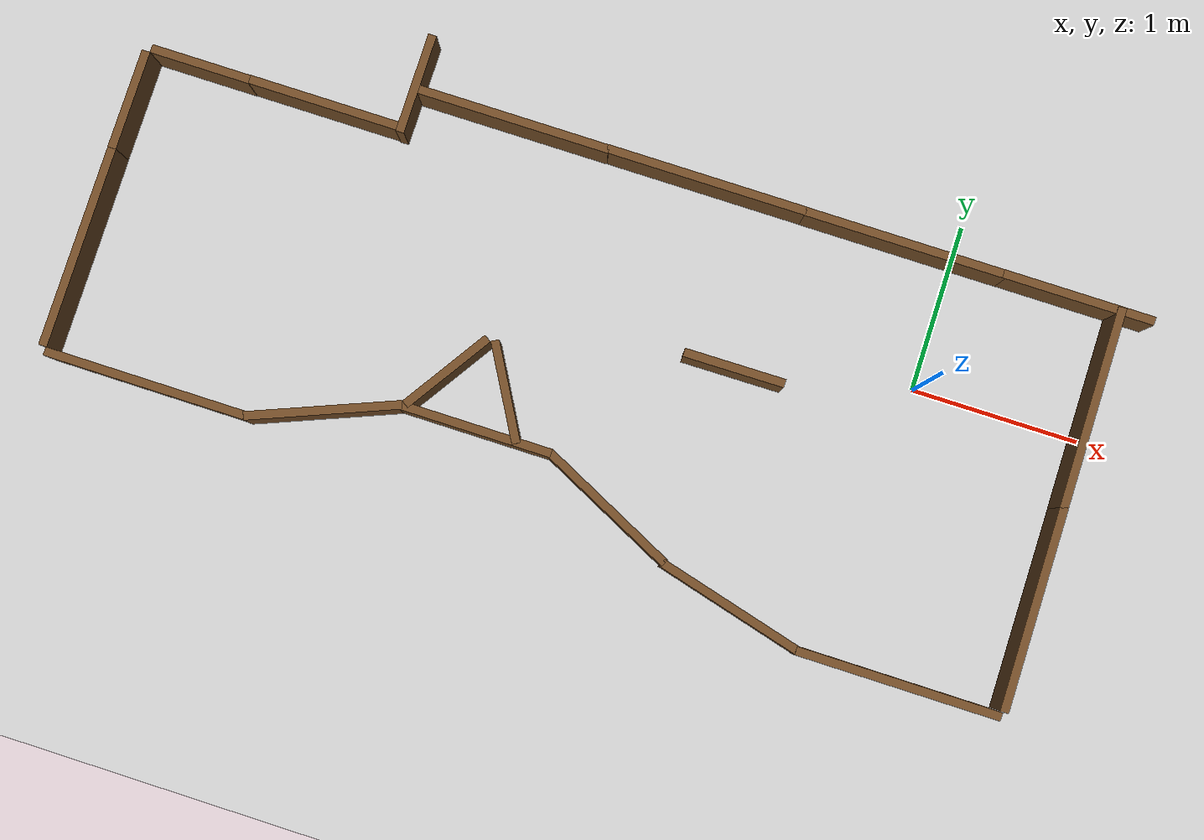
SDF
<sdf version="1.7">
 <world name="default">
  <light name="sun" type="directional">
   <pose>0 0 10 0 -0 0</pose>
   <diffuse>0.8 0.8 0.8 1</diffuse>
   <specular>0.2 0.2 0.2 1</specular>
   <attenuation>
    <range>1000</range>
    <constant>0.9</constant>
    <linear>0.01</linear>
    <quadratic>0.001</quadratic>
   </attenuation>
   <direction>-0.5 0.1 -0.9</direction>
   <spot><inner_angle>0</inner_angle><outer_angle>0</outer_angle><falloff>0</falloff></spot>
  </light>
  <model name="ground_plane">
   <static>1</static>
   <link name="link">
    <collision name="collision">
     <geometry><plane><normal>0 0 1</normal><size>100 100</size></plane></geometry>
     <surface>
      <contact><collide_bitmask>65535</collide_bitmask></contact>
      <friction><ode><mu>100</mu><mu2>50</mu2></ode></friction>
     </surface>
    </collision>
    <visual name="visual">
     <cast_shadows>0</cast_shadows>
     <geometry><plane><normal>0 0 1</normal><size>100 100</size></plane></geometry>
     <material>
      <script><uri>file://media/materials/scripts/gazebo.material</uri><name>Gazebo/Grey</name></script>
     </material>
    </visual>
   </link>
  </model>
  <gravity>0 0 -9.8</gravity>
  <magnetic_field>6e-06 2.3e-05 -4.2e-05</magnetic_field>
  <atmosphere type="adiabatic"/>
  <physics type="ode">
   <max_step_size>0.001</max_step_size>
   <real_time_factor>1</real_time_factor>
   <real_time_update_rate>1000</real_time_update_rate>
  </physics>
  <scene><ambient>0.4 0.4 0.4 1</ambient><background>0.7 0.7 0.7 1</background><shadows>1</shadows></scene>
  <audio><device>default</device></audio>
  <spherical_coordinates>
   <surface_model>EARTH_WGS84</surface_model>
   <latitude_deg>0</latitude_deg>
   <longitude_deg>0</longitude_deg>
   <elevation>0</elevation>
   <heading_deg>0</heading_deg>
  </spherical_coordinates>
  <model name="wall120cm">
   <static>1</static>
   <link name="link">
    <collision name="collision"><geometry><box><size>1.2 0.05 0.3</size></box></geometry></collision>
    <visual name="visual">
     <geometry><box><size>1.2 0.05 0.3</size></box></geometry>
     <material>
      <ambient>0.45 0.3 0.15 1</ambient>
      <diffuse>0.45 0.3 0.15 1</diffuse>
      <specular>0.05 0.05 0.05 1</specular>
     </material>
    </visual>
   </link>
   <pose>0.972614 -1.01281 0.156693 0 0 -1.56835</pose>
  </model>
  <model name="wall120cm_0">
   <static>1</static>
   <link name="link">
    <collision name="collision"><geometry><box><size>1.2 0.05 0.3</size></box></geometry></collision>
    <visual name="visual">
     <geometry><box><size>1.2 0.05 0.3</size></box></geometry>
     <material>
      <ambient>0.45 0.3 0.15 1</ambient>
      <diffuse>0.45 0.3 0.15 1</diffuse>
      <specular>0.05 0.05 0.05 1</specular>
     </material>
    </visual>
   </link>
   <pose>0.36817 -1.64112 0.151141 0 -0 0</pose>
  </model>
  <model name="wall90cm">
   <static>1</static>
   <pose>-0.658548 -1.52149 0.14935 0 0 -0.264359</pose>
   <link name="link">
    <collision name="collision"><geometry><box><size>0.9 0.05 0.3</size></box></geometry></collision>
    <visual name="visual">
     <geometry><box><size>0.9 0.05 0.3</size></box></geometry>
     <material>
      <ambient>0.45 0.3 0.15 1</ambient>
      <diffuse>0.45 0.3 0.15 1</diffuse>
      <specular>0.05 0.05 0.05 1</specular>
     </material>
    </visual>
   </link>
  </model>
  <model name="wall90cm_clone">
   <static>1</static>
   <pose>-1.48117 -1.20427 0.14935 0 0 -0.455611</pose>
   <link name="link">
    <collision name="collision"><geometry><box><size>0.9 0.05 0.3</size></box></geometry></collision>
    <visual name="visual">
     <geometry><box><size>0.9 0.05 0.3</size></box></geometry>
     <material>
      <ambient>0.45 0.3 0.15 1</ambient>
      <diffuse>0.45 0.3 0.15 1</diffuse>
      <specular>0.05 0.05 0.05 1</specular>
     </material>
    </visual>
   </link>
  </model>
  <model name="wall90cm_0">
   <static>1</static>
   <pose>-2.32586 -1.00952 0.151523 0 -0 0</pose>
   <link name="link">
    <collision name="collision"><geometry><box><size>0.9 0.05 0.3</size></box></geometry></collision>
    <visual name="visual">
     <geometry><box><size>0.9 0.05 0.3</size></box></geometry>
     <material>
      <ambient>0.45 0.3 0.15 1</ambient>
      <diffuse>0.45 0.3 0.15 1</diffuse>
      <specular>0.05 0.05 0.05 1</specular>
     </material>
    </visual>
   </link>
  </model>
  <model name="wall90cm_1">
   <static>1</static>
   <pose>-3.18411 -1.17314 0.15318 0 -0 0.381737</pose>
   <link name="link">
    <collision name="collision"><geometry><box><size>0.9 0.05 0.3</size></box></geometry></collision>
    <visual name="visual">
     <geometry><box><size>0.9 0.05 0.3</size></box></geometry>
     <material>
      <ambient>0.45 0.3 0.15 1</ambient>
      <diffuse>0.45 0.3 0.15 1</diffuse>
      <specular>0.05 0.05 0.05 1</specular>
     </material>
    </visual>
   </link>
  </model>
  <model name="wall120cm_0_clone">
   <static>1</static>
   <link name="link">
    <collision name="collision"><geometry><box><size>1.2 0.05 0.3</size></box></geometry></collision>
    <visual name="visual">
     <geometry><box><size>1.2 0.05 0.3</size></box></geometry>
     <material>
      <ambient>0.45 0.3 0.15 1</ambient>
      <diffuse>0.45 0.3 0.15 1</diffuse>
      <specular>0.05 0.05 0.05 1</specular>
     </material>
    </visual>
   </link>
   <pose>-4.19678 -1.33593 0.151141 0 -0 0</pose>
  </model>
  <model name="wall120cm_clone">
   <static>1</static>
   <link name="link">
    <collision name="collision"><geometry><box><size>1.2 0.05 0.3</size></box></geometry></collision>
    <visual name="visual">
     <geometry><box><size>1.2 0.05 0.3</size></box></geometry>
     <material>
      <ambient>0.45 0.3 0.15 1</ambient>
      <diffuse>0.45 0.3 0.15 1</diffuse>
      <specular>0.05 0.05 0.05 1</specular>
     </material>
    </visual>
   </link>
   <pose>-4.81708 -0.710998 0.156693 0 0 -1.56835</pose>
  </model>
  <model name="wall60cm">
   <static>1</static>
   <pose>-4.8202 0.188489 0.153646 0 0 -1.57157</pose>
   <link name="link">
    <collision name="collision"><geometry><box><size>0.6 0.05 0.3</size></box></geometry></collision>
    <visual name="visual">
     <geometry><box><size>0.6 0.05 0.3</size></box></geometry>
     <material>
      <ambient>0.45 0.3 0.15 1</ambient>
      <diffuse>0.45 0.3 0.15 1</diffuse>
      <specular>0.05 0.05 0.05 1</specular>
     </material>
    </visual>
   </link>
  </model>
  <model name="wall60cm_0">
   <static>1</static>
   <pose>-4.49725 0.512487 0.149997 0 -0 0</pose>
   <link name="link">
    <collision name="collision"><geometry><box><size>0.6 0.05 0.3</size></box></geometry></collision>
    <visual name="visual">
     <geometry><box><size>0.6 0.05 0.3</size></box></geometry>
     <material>
      <ambient>0.45 0.3 0.15 1</ambient>
      <diffuse>0.45 0.3 0.15 1</diffuse>
      <specular>0.05 0.05 0.05 1</specular>
     </material>
    </visual>
   </link>
  </model>
  <model name="wall90cm_0_clone">
   <static>1</static>
   <pose>-3.74847 0.514085 0.151523 0 -0 0</pose>
   <link name="link">
    <collision name="collision"><geometry><box><size>0.9 0.05 0.3</size></box></geometry></collision>
    <visual name="visual">
     <geometry><box><size>0.9 0.05 0.3</size></box></geometry>
     <material>
      <ambient>0.45 0.3 0.15 1</ambient>
      <diffuse>0.45 0.3 0.15 1</diffuse>
      <specular>0.05 0.05 0.05 1</specular>
     </material>
    </visual>
   </link>
  </model>
  <model name="wall60cm_clone">
   <static>1</static>
   <pose>-3.27507 0.78414 0.153646 0 0 -1.57157</pose>
   <link name="link">
    <collision name="collision"><geometry><box><size>0.6 0.05 0.3</size></box></geometry></collision>
    <visual name="visual">
     <geometry><box><size>0.6 0.05 0.3</size></box></geometry>
     <material>
      <ambient>0.45 0.3 0.15 1</ambient>
      <diffuse>0.45 0.3 0.15 1</diffuse>
      <specular>0.05 0.05 0.05 1</specular>
     </material>
    </visual>
   </link>
  </model>
  <model name="wall120cm_0_clone_0">
   <static>1</static>
   <link name="link">
    <collision name="collision"><geometry><box><size>1.2 0.05 0.3</size></box></geometry></collision>
    <visual name="visual">
     <geometry><box><size>1.2 0.05 0.3</size></box></geometry>
     <material>
      <ambient>0.45 0.3 0.15 1</ambient>
      <diffuse>0.45 0.3 0.15 1</diffuse>
      <specular>0.05 0.05 0.05 1</specular>
     </material>
    </visual>
   </link>
   <pose>-2.69813 0.756501 0.151141 0 -0 0</pose>
  </model>
  <model name="wall120cm_0_clone_0_clone">
   <static>1</static>
   <link name="link">
    <collision name="collision"><geometry><box><size>1.2 0.05 0.3</size></box></geometry></collision>
    <visual name="visual">
     <geometry><box><size>1.2 0.05 0.3</size></box></geometry>
     <material>
      <ambient>0.45 0.3 0.15 1</ambient>
      <diffuse>0.45 0.3 0.15 1</diffuse>
      <specular>0.05 0.05 0.05 1</specular>
     </material>
    </visual>
   </link>
   <pose>-1.51169 0.758141 0.151141 0 -0 0</pose>
  </model>
  <model name="wall120cm_0_clone_0_clone_0">
   <static>1</static>
   <link name="link">
    <collision name="collision"><geometry><box><size>1.2 0.05 0.3</size></box></geometry></collision>
    <visual name="visual">
     <geometry><box><size>1.2 0.05 0.3</size></box></geometry>
     <material>
      <ambient>0.45 0.3 0.15 1</ambient>
      <diffuse>0.45 0.3 0.15 1</diffuse>
      <specular>0.05 0.05 0.05 1</specular>
     </material>
    </visual>
   </link>
   <pose>-0.316813 0.757129 0.151141 0 -0 0</pose>
  </model>
  <model name="wall90cm_0_clone_0">
   <static>1</static>
   <pose>0.715507 0.757722 0.151523 0 -0 0</pose>
   <link name="link">
    <collision name="collision"><geometry><box><size>0.9 0.05 0.3</size></box></geometry></collision>
    <visual name="visual">
     <geometry><box><size>0.9 0.05 0.3</size></box></geometry>
     <material>
      <ambient>0.45 0.3 0.15 1</ambient>
      <diffuse>0.45 0.3 0.15 1</diffuse>
      <specular>0.05 0.05 0.05 1</specular>
     </material>
    </visual>
   </link>
  </model>
  <model name="wall120cm_clone_0">
   <static>1</static>
   <link name="link">
    <collision name="collision"><geometry><box><size>1.2 0.05 0.3</size></box></geometry></collision>
    <visual name="visual">
     <geometry><box><size>1.2 0.05 0.3</size></box></geometry>
     <material>
      <ambient>0.45 0.3 0.15 1</ambient>
      <diffuse>0.45 0.3 0.15 1</diffuse>
      <specular>0.05 0.05 0.05 1</specular>
     </material>
    </visual>
   </link>
   <pose>0.968825 0.177706 0.156693 0 0 -1.56835</pose>
  </model>
  <model name="wall60cm_clone_0">
   <static>1</static>
   <pose>-2.58481 -0.748343 0.153646 0 0 -2.15167</pose>
   <link name="link">
    <collision name="collision"><geometry><box><size>0.6 0.05 0.3</size></box></geometry></collision>
    <visual name="visual">
     <geometry><box><size>0.6 0.05 0.3</size></box></geometry>
     <material>
      <ambient>0.45 0.3 0.15 1</ambient>
      <diffuse>0.45 0.3 0.15 1</diffuse>
      <specular>0.05 0.05 0.05 1</specular>
     </material>
    </visual>
   </link>
  </model>
  <model name="wall60cm_clone_0_clone">
   <static>1</static>
   <pose>-1.03434 -0.228836 0.153646 0 -0 0.006973</pose>
   <link name="link">
    <collision name="collision"><geometry><box><size>0.6 0.05 0.3</size></box></geometry></collision>
    <visual name="visual">
     <geometry><box><size>0.6 0.05 0.3</size></box></geometry>
     <material>
      <ambient>0.45 0.3 0.15 1</ambient>
      <diffuse>0.45 0.3 0.15 1</diffuse>
      <specular>0.05 0.05 0.05 1</specular>
     </material>
    </visual>
   </link>
  </model>
  <model name="wall60cm_clone_0_clone_0">
   <static>1</static>
   <pose>-2.22997 -0.756546 0.153646 0 0 -1.05354</pose>
   <link name="link">
    <collision name="collision"><geometry><box><size>0.6 0.05 0.3</size></box></geometry></collision>
    <visual name="visual">
     <geometry><box><size>0.6 0.05 0.3</size></box></geometry>
     <material>
      <ambient>0.45 0.3 0.15 1</ambient>
      <diffuse>0.45 0.3 0.15 1</diffuse>
      <specular>0.05 0.05 0.05 1</specular>
     </material>
    </visual>
   </link>
  </model>
 </world>
</sdf>
